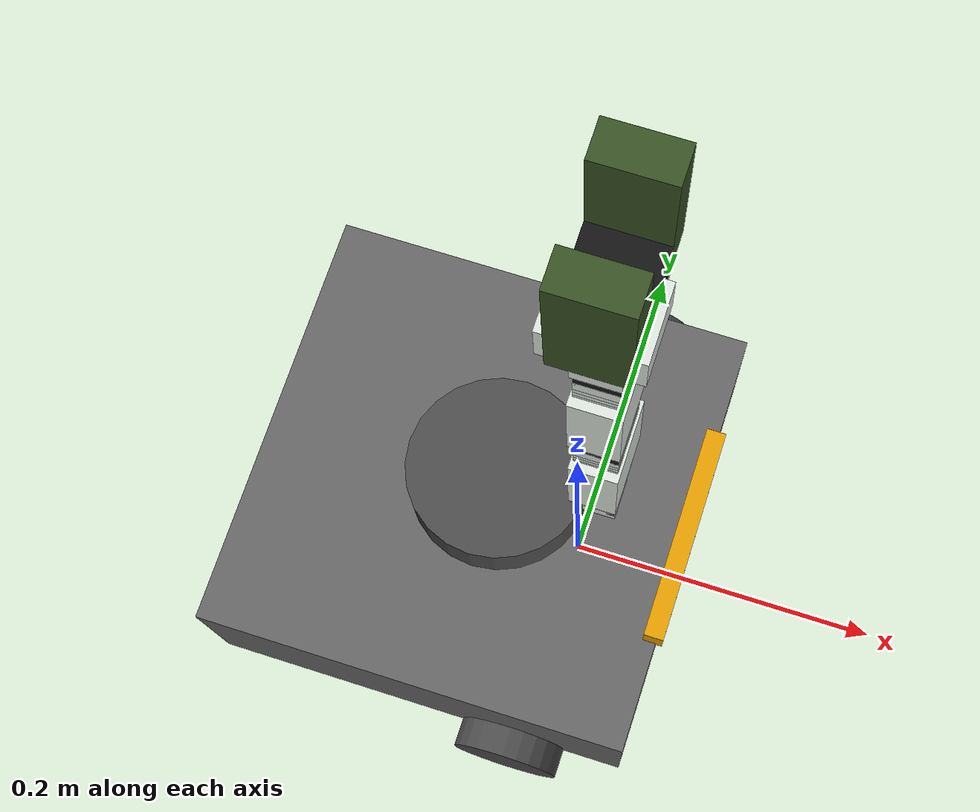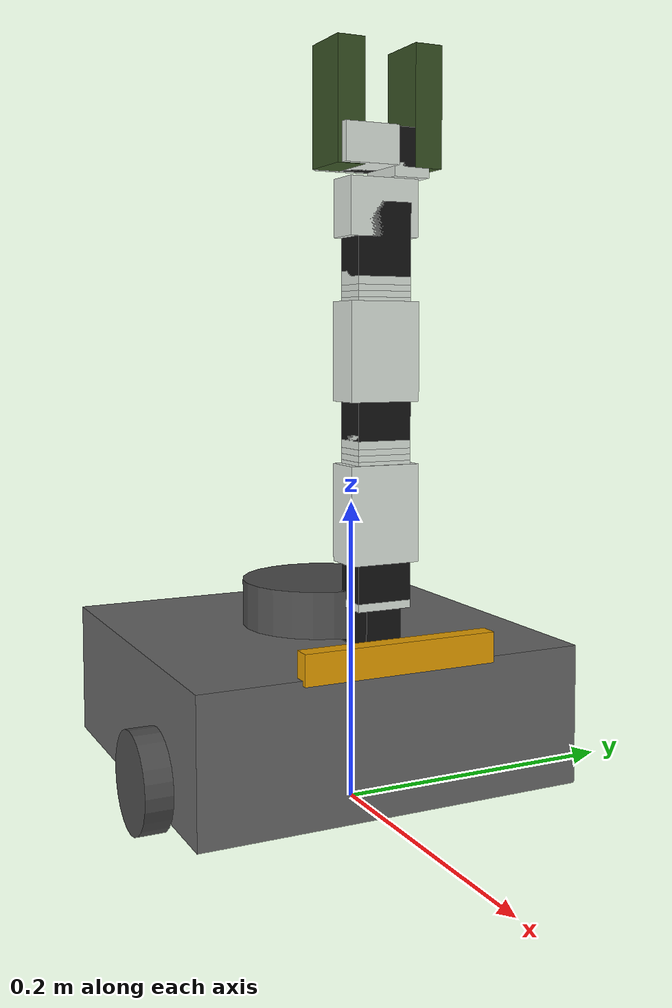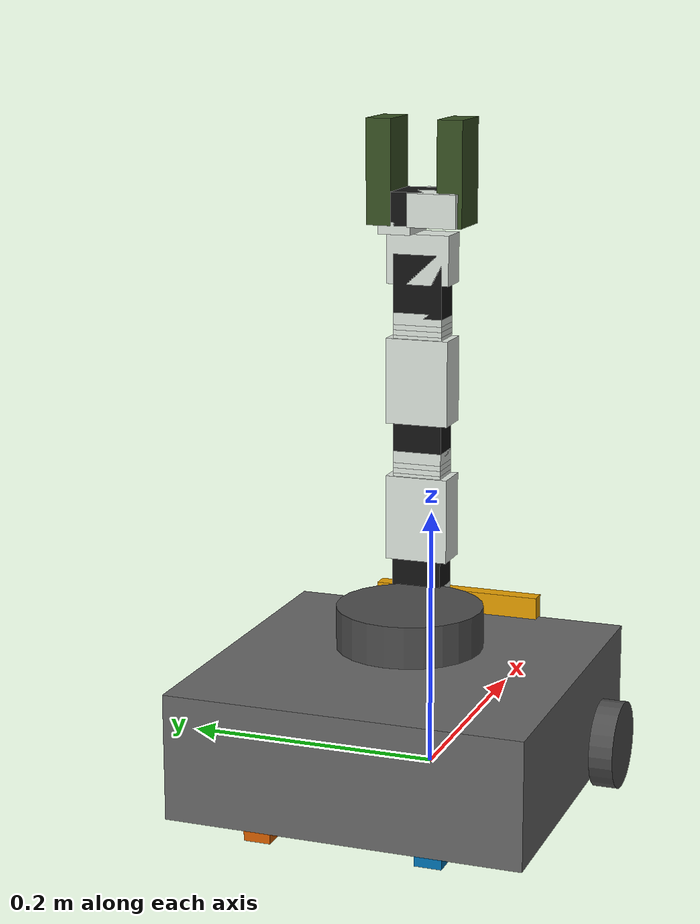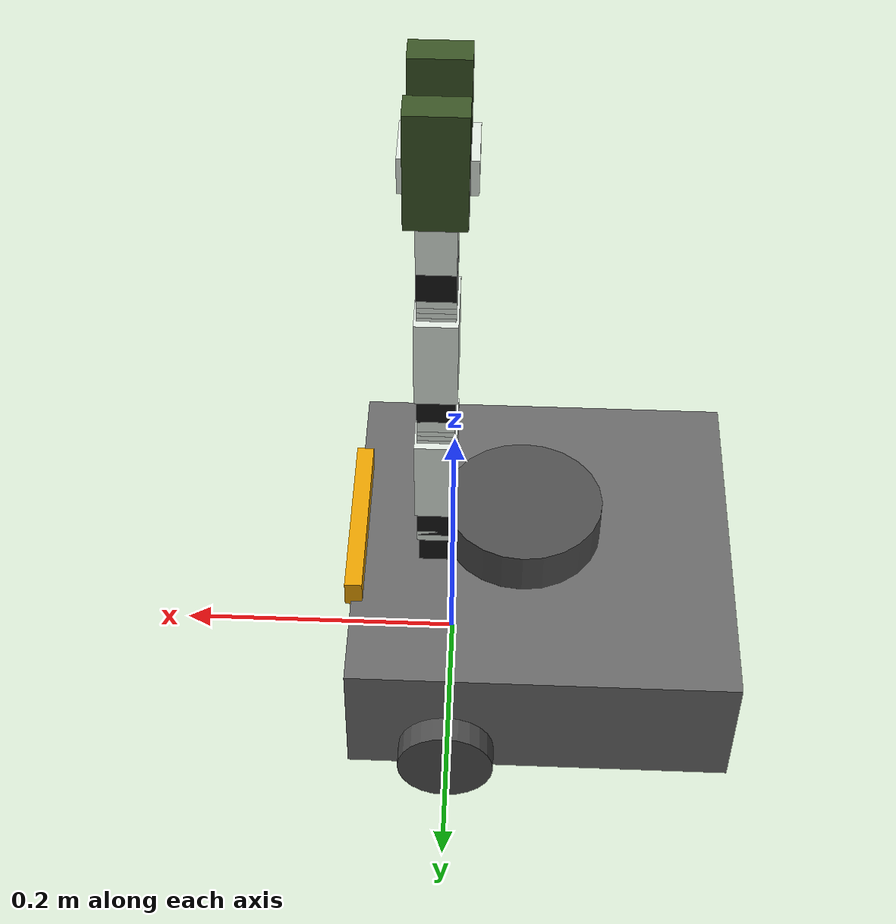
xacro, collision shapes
<?xml version="1.0"?>
<robot xmlns:xacro="http://www.ros.org/wiki/xacro" name="turtlebot_arm">
    <xacro:arg name="initial_positions_file" default="initial_positions.yaml" />

    <!-- Import turtlebot_arm urdf file -->
    <xacro:include filename="$(find turtlebot)/description/turtlebot_with_arm.xacro" />

    <!-- Import control_xacro -->
    <xacro:include filename="turtlebot_arm.ros2_control.xacro" />

    <xacro:turtlebot_arm_ros2_control name="FakeSystem" initial_positions_file="$(arg initial_positions_file)"/>

</robot>

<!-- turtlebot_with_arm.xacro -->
<robot name="turtlenbot_with_arm" xmlns:xacro="http://www.ros.org/wiki/xacro">

<xacro:include filename="$(find turtlebot)/description/turtlebot/urdf/turtlebot3_waffle.urdf"/>
<xacro:include filename="$(find turtlebot)/description/arm/urdf/turtlebot_arm.urdf.xacro"/>

</robot>

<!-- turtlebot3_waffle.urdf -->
<robot name="turtlebot3_waffle" xmlns:xacro="http://ros.org/wiki/xacro">

  <xacro:include filename="turtlebot_control.xacro" />

  <!-- Init colour -->
  <material name="black">
      <color rgba="0.0 0.0 0.0 1.0"/>
  </material>

  <material name="dark">
    <color rgba="0.3 0.3 0.3 1.0"/>
  </material>

  <material name="light_black">
    <color rgba="0.4 0.4 0.4 1.0"/>
  </material>

  <material name="blue">
    <color rgba="0.0 0.0 0.8 1.0"/>
  </material>

  <material name="green">
    <color rgba="0.0 0.8 0.0 1.0"/>
  </material>

  <material name="grey">
    <color rgba="0.5 0.5 0.5 1.0"/>
  </material>

  <material name="orange">
    <color rgba="1.0 0.4235 0.0392 1.0"/>
  </material>

  <material name="brown">
    <color rgba="0.8706 0.8118 0.7647 1.0"/>
  </material>

  <material name="red">
    <color rgba="0.8 0.0 0.0 1.0"/>
  </material>

  <material name="white">
    <color rgba="1.0 1.0 1.0 1.0"/>
  </material>

  <link name="world"/>

  <joint name="base_joint" type="fixed">
    <parent link="world"/>
    <child link="base_link" />
    <origin xyz="0 0 0.010" rpy="0 0 0"/>
  </joint>

  <link name="base_link">
    <visual>
      <origin xyz="-0.064 0 0.0" rpy="0 0 0"/>
      <geometry>
        <mesh filename="file://$(find turtlebot)/description/turtlebot/meshes/bases/waffle_base.stl" scale="0.001 0.001 0.001"/>
      </geometry>
      <material name="light_black"/>
    </visual>

    <collision>
      <origin xyz="-0.064 0 0.047" rpy="0 0 0"/>
      <geometry>
        <box size="0.266 0.266 0.094"/>
      </geometry>
    </collision>

    <inertial>
      <origin xyz="0 0 0" rpy="0 0 0"/>
      <mass value="1.3729096e+00"/>
      <inertia ixx="8.7002718e-03" ixy="-4.7576583e-05" ixz="1.1160499e-04"
               iyy="8.6195418e-03" iyz="-3.5422299e-06"
               izz="1.4612727e-02" />
    </inertial>
  </link>

  <joint name="wheel_left_joint" type="continuous">
    <parent link="base_link"/>
    <child link="wheel_left_link"/>
    <origin xyz="0.0 0.144 0.023" rpy="-1.57 0 0"/>
    <axis xyz="0 0 1"/>
  </joint>

  <link name="wheel_left_link">
    <visual>
      <origin xyz="0 0 0" rpy="1.57 0 0"/>
      <geometry>
        <mesh filename="file://$(find turtlebot)/description/turtlebot/meshes/wheels/left_tire.stl" scale="0.001 0.001 0.001"/>
      </geometry>
      <material name="dark"/>
    </visual>

    <collision>
      <origin xyz="0 0 0" rpy="0 0 0"/>
      <geometry>
        <cylinder length="0.018" radius="0.033"/>
      </geometry>
    </collision>

    <inertial>
      <origin xyz="0 0 0" />
      <mass value="2.8498940e-02" />
      <inertia ixx="1.1175580e-05" ixy="-4.2369783e-11" ixz="-5.9381719e-09"
               iyy="1.1192413e-05" iyz="-1.4400107e-11"
               izz="2.0712558e-05" />
      </inertial>
  </link>

  <joint name="wheel_right_joint" type="continuous">
    <parent link="base_link"/>
    <child link="wheel_right_link"/>
    <origin xyz="0.0 -0.144 0.023" rpy="-1.57 0 0"/>
    <axis xyz="0 0 1"/>
  </joint>

  <link name="wheel_right_link">
    <visual>
      <origin xyz="0 0 0" rpy="1.57 0 0"/>
      <geometry>
        <mesh filename="file://$(find turtlebot)/description/turtlebot/meshes/wheels/right_tire.stl" scale="0.001 0.001 0.001"/>
      </geometry>
      <material name="dark"/>
    </visual>

    <collision>
      <origin xyz="0 0 0" rpy="0 0 0"/>
      <geometry>
        <cylinder length="0.018" radius="0.033"/>
      </geometry>
    </collision>

    <inertial>
      <origin xyz="0 0 0" />
      <mass value="2.8498940e-02" />
      <inertia ixx="1.1175580e-05" ixy="-4.2369783e-11" ixz="-5.9381719e-09"
               iyy="1.1192413e-05" iyz="-1.4400107e-11"
               izz="2.0712558e-05" />
      </inertial>
  </link>

  <joint name="caster_back_right_joint" type="fixed">
    <parent link="base_link"/>
    <child link="caster_back_right_link"/>
    <origin xyz="-0.177 -0.064 -0.004" rpy="-1.57 0 0"/>
  </joint>

  <link name="caster_back_right_link">
    <collision>
      <origin xyz="0 0.001 0" rpy="0 0 0"/>
      <geometry>
        <box size="0.030 0.009 0.020"/>
      </geometry>
    </collision>

    <inertial>
      <origin xyz="0 0 0" />
      <mass value="0.005" />
      <inertia ixx="0.001" ixy="0.0" ixz="0.0"
               iyy="0.001" iyz="0.0"
               izz="0.001" />
    </inertial>
  </link>

  <joint name="caster_back_left_joint" type="fixed">
    <parent link="base_link"/>
    <child link="caster_back_left_link"/>
    <origin xyz="-0.177 0.064 -0.004" rpy="-1.57 0 0"/>
  </joint>

  <link name="caster_back_left_link">
    <collision>
      <origin xyz="0 0.001 0" rpy="0 0 0"/>
      <geometry>
        <box size="0.030 0.009 0.020"/>
      </geometry>
    </collision>

    <inertial>
      <origin xyz="0 0 0" />
      <mass value="0.005" />
      <inertia ixx="0.001" ixy="0.0" ixz="0.0"
               iyy="0.001" iyz="0.0"
               izz="0.001" />
    </inertial>
  </link>

  <joint name="imu_joint" type="fixed">
    <parent link="base_link"/>
    <child link="imu_link"/>
    <origin xyz="0.0 0 0.068" rpy="0 0 0"/>
  </joint>

  <link name="imu_link"/>

  <joint name="scan_joint" type="fixed">
    <parent link="base_link"/>
    <child link="base_scan"/>
    <origin xyz="-0.064 0 0.122" rpy="0 0 0"/>
  </joint>

  <link name="base_scan">
    <visual>
      <origin xyz="0 0 0" rpy="0 0 0"/>
      <geometry>
        <mesh filename="file://$(find turtlebot)/description/turtlebot/meshes/sensors/lds.stl" scale="0.001 0.001 0.001"/>
      </geometry>
      <material name="dark"/>
    </visual>

    <collision>
      <origin xyz="0.015 0 -0.0065" rpy="0 0 0"/>
      <geometry>
        <cylinder length="0.0315" radius="0.055"/>
      </geometry>
    </collision>

    <inertial>
      <mass value="0.114" />
      <origin xyz="0 0 0" />
      <inertia ixx="0.001" ixy="0.0" ixz="0.0"
               iyy="0.001" iyz="0.0"
               izz="0.001" />
    </inertial>
  </link>

  <joint name="camera_joint" type="fixed">
    <origin xyz="0.064 -0.065 0.094" rpy="0 0 0"/>
    <parent link="base_link"/>
    <child link="camera_link"/>
  </joint>

  <link name="camera_link">
    <visual>
     <origin xyz="0 0 0" rpy="1.57 0 1.57"/>
      <geometry>
       <mesh filename="file://$(find turtlebot)/description/turtlebot/meshes/sensors/r200.dae" />
      </geometry>
    </visual>
    <collision>
      <origin xyz="0.003 0.065 0.007" rpy="0 0 0"/>
      <geometry>
        <box size="0.012 0.132 0.020"/>
      </geometry>
    </collision>

    <!-- This inertial field needs doesn't contain reliable data!! -->
  </link>

  <joint name="camera_rgb_joint" type="fixed">
    <origin xyz="0.005 0.018 0.013" rpy="0 0 0"/>
    <parent link="camera_link"/>
    <child link="camera_rgb_frame"/>
  </joint>
  <link name="camera_rgb_frame"/>

  <joint name="camera_rgb_optical_joint" type="fixed">
    <origin xyz="0 0 0" rpy="-1.57 0 -1.57"/>
    <parent link="camera_rgb_frame"/>
    <child link="camera_rgb_optical_frame"/>
  </joint>
  <link name="camera_rgb_optical_frame"/>

  <joint name="camera_depth_joint" type="fixed">
    <origin xyz="0.005 0.028 0.013" rpy="0 0 0"/>
    <parent link="camera_link"/>
    <child link="camera_depth_frame"/>
  </joint>
  <link name="camera_depth_frame"/>

  <joint name="camera_depth_optical_joint" type="fixed">
    <origin xyz="0 0 0" rpy="-1.57 0 -1.57"/>
    <parent link="camera_depth_frame"/>
    <child link="camera_depth_optical_frame"/>
  </joint>
  <link name="camera_depth_optical_frame"/>

</robot>

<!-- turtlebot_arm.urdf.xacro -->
<!-- Describe URDF for Turtlebot Arm -->
<robot name="turtlebot_arm" xmlns:xacro="http://ros.org/wiki/xacro">

    <!-- We can configure joints velocity limit and lower/upper limits
         to allow access to different operational areas, e.g. left handed vs. right handed robot -->
    <xacro:property name="joints_vlimit" value="1.571"/>
    <xacro:property name="pan_llimit" value="-2.617"/>
    <xacro:property name="pan_ulimit" value="2.617"/>
    <xacro:property name="shoulder_llimit" value="-2.617"/>
    <xacro:property name="shoulder_ulimit" value="2.617"/>
    <xacro:property name="elbow_llimit" value="-2.617"/>
    <xacro:property name="elbow_ulimit" value="2.617"/>
    <xacro:property name="wrist_llimit" value="-1.745"/>
    <xacro:property name="wrist_ulimit" value="1.745"/>

    <!-- Included URDF Files -->
    <xacro:include filename="$(find turtlebot)/description/arm/urdf/turtlebot_arm.xacro"/>

    <!-- As we don't have here a turtlebot base, add a base_link link as its location reference -->

    <!-- Turtlebot arm macro -->
    <xacro:turtlebot_arm parent="base_link" color="White" gripper_color="Green"
                         pincher_gripper="false" turtlebot_gripper="true">
      <!-- Place the "floating" arm at the location it should be if mounted on a turtlebot,
           as pick and place and other demos assume this location -->
      <origin xyz="0.012 0.012 0.1018"/>
    </xacro:turtlebot_arm>
</robot>

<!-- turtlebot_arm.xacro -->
<!-- Arm description for Turtlebot Arm and PhantomX Pincher arm -->
<robot xmlns:xacro="http://ros.org/wiki/xacro">
  <xacro:include filename="$(find turtlebot)/description/arm/urdf/arm_hardware.xacro"/>

  <material name="White">
    <color rgba="0.87 0.90 0.87 1.0"/>
  </material>
  <material name="Black">
    <color rgba="0.08 0.08 0.08 1.0"/>
  </material>
  <material name="Gray">
    <color rgba="0.2 0.2 0.21 1.0"/>
  </material>
  <material name="Green">
    <color rgba="0.22 0.32 0.14 1.0"/>
  </material>

  <xacro:macro name="turtlebot_arm" params="parent color pincher_gripper turtlebot_gripper gripper_color *origin">
    <link name="arm_base_link"/>
    <joint name="arm_base_joint" type="fixed">
      <xacro:insert_block name="origin"/>
      <parent link="${parent}"/>
      <child link="arm_base_link"/>
    </joint>

    <!-- fake gripper_link joint gives us a free servo!
         this makes us 5DOF and saves you $44.90
         that's a lot of coin! -->
    <link name="gripper_link"/>
    <joint name="gripper_link_joint" type="revolute">
      <origin xyz="0 0 0.112" rpy="0 -1.57 0"/>
      <parent link="arm_wrist_flex_link"/>
      <child link="gripper_link"/>
      <limit effort="30" velocity="1" lower="-3.14" upper="3.14"/>
      <axis xyz="1 0 0"/>
    </joint>

    <!-- shoulder pan joint -->
    <xacro:dynamixel_AX12_fixed parent="arm_base_link" name="arm_shoulder_pan_servo">
      <origin xyz="0 0 0" rpy="${M_PI/2} 0 ${M_PI/2}"/>
    </xacro:dynamixel_AX12_fixed>
    <xacro:bioloid_F3_revolute parent="arm_shoulder_pan_servo_link" name="arm_shoulder_pan" color="${color}"
                               vlimit="${joints_vlimit}" llimit="${pan_llimit}" ulimit="${pan_ulimit}">
      <origin xyz="0 ${AX12_WIDTH/2} 0" rpy="${-M_PI/2} ${M_PI/2} ${M_PI}"/>
    </xacro:bioloid_F3_revolute>

    <!-- shoulder lift joint -->
    <xacro:dynamixel_AX12_fixed parent="arm_shoulder_pan_link" name="arm_shoulder_lift_servo">
      <origin xyz="0 0 ${-AX12_HEIGHT-F10_HEIGHT+0.001}" rpy="0 ${M_PI} 0"/>
    </xacro:dynamixel_AX12_fixed>
    <xacro:bioloid_F4_revolute parent="arm_shoulder_lift_servo_link" name="arm_shoulder_lift" color="${color}"
                               vlimit="${joints_vlimit}" llimit="${shoulder_llimit}" ulimit="${shoulder_ulimit}">
      <origin xyz="0 0 0" rpy="0 0 0"/>
    </xacro:bioloid_F4_revolute>
    <xacro:bioloid_F10_fixed parent="arm_shoulder_lift_link" name="arm_shoulder_F10_0" color="${color}">
      <origin xyz="0 0 ${F4_HEIGHT+F10_HEIGHT/2}" rpy="0 0 0"/>
    </xacro:bioloid_F10_fixed>
    <xacro:bioloid_F10_fixed parent="arm_shoulder_F10_0_link" name="arm_shoulder_F10_1" color="${color}">
      <origin xyz="0 0 ${F10_HEIGHT}" rpy="0 0 0"/>
    </xacro:bioloid_F10_fixed>
    <xacro:bioloid_F10_fixed parent="arm_shoulder_F10_1_link" name="arm_shoulder_F10_2" color="${color}">
      <origin xyz="0 0 ${F10_HEIGHT}" rpy="0 0 0"/>
    </xacro:bioloid_F10_fixed>
    <xacro:bioloid_F3_fixed parent="arm_shoulder_F10_2_link" name="arm_shoulder_F3_0" color="${color}">
      <origin xyz="0 0 ${F10_HEIGHT/2}" rpy="0 ${M_PI} 0"/>
    </xacro:bioloid_F3_fixed>

    <!-- elbow joint -->
    <xacro:dynamixel_AX12_fixed parent="arm_shoulder_F3_0_link" name="arm_elbow_flex_servo">
      <origin xyz="0 0 ${-AX12_HEIGHT-F10_HEIGHT+0.001}" rpy="0 ${M_PI} 0"/>
    </xacro:dynamixel_AX12_fixed>
    <xacro:bioloid_F4_revolute parent="arm_elbow_flex_servo_link" name="arm_elbow_flex" color="${color}"
                               vlimit="${joints_vlimit}" llimit="${elbow_llimit}" ulimit="${elbow_ulimit}">
      <origin xyz="0 0 0" rpy="0 0 0"/>
    </xacro:bioloid_F4_revolute>
    <xacro:bioloid_F10_fixed parent="arm_elbow_flex_link" name="arm_elbow_F10_0" color="${color}">
      <origin xyz="0 0 ${F4_HEIGHT+F10_HEIGHT/2}" rpy="0 0 0"/>
    </xacro:bioloid_F10_fixed>
    <xacro:bioloid_F10_fixed parent="arm_elbow_F10_0_link" name="arm_elbow_F10_1" color="${color}">
      <origin xyz="0 0 ${F10_HEIGHT}" rpy="0 0 0"/>
    </xacro:bioloid_F10_fixed>
    <xacro:bioloid_F10_fixed parent="arm_elbow_F10_1_link" name="arm_elbow_F10_2" color="${color}">
      <origin xyz="0 0 ${F10_HEIGHT}" rpy="0 0 0"/>
    </xacro:bioloid_F10_fixed>
    <xacro:bioloid_F3_fixed parent="arm_elbow_F10_2_link" name="arm_elbow_F3_0" color="${color}">
      <origin xyz="0 0 ${F10_HEIGHT/2}" rpy="0 ${M_PI} 0"/>
    </xacro:bioloid_F3_fixed>

    <!-- wrist joint -->
    <xacro:dynamixel_AX12_fixed parent="arm_elbow_F3_0_link" name="arm_wrist_flex_servo">
      <origin xyz="0 0 ${-AX12_HEIGHT-F10_HEIGHT+0.001}" rpy="0 ${M_PI} 0"/>
    </xacro:dynamixel_AX12_fixed>
    <xacro:bioloid_F2_revolute parent="arm_wrist_flex_servo_link" name="arm_wrist_flex" color="${color}"
                               vlimit="${joints_vlimit}" llimit="${wrist_llimit}" ulimit="${wrist_ulimit}">
      <origin xyz="0 0 0" rpy="0 0 0"/>
    </xacro:bioloid_F2_revolute>

  <!-- gripper - Load either Turtlebot gripper or Pincher Gripper -->
  <xacro:if value="${pincher_gripper}">
  <xacro:include filename="$(find turtlebot)/description/arm/urdf/pincher_gripper.xacro"/>
  </xacro:if>
  <xacro:if value="${turtlebot_gripper}">
  <xacro:include filename="$(find turtlebot)/description/arm/urdf/turtlebot_gripper.xacro"/>
  </xacro:if>

  </xacro:macro>

</robot>

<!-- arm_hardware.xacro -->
<!-- Basic URDF components for Turtlebot Arm and PhantomX Pincher Arm-->
<robot xmlns:xacro="http://ros.org/wiki/xacro">
  <xacro:property name="M_PI" value="3.14159"/>
  <xacro:property name="M_SCALE" value="0.001"/>
  <xacro:property name="F10_HEIGHT" value="0.004"/>
  <xacro:property name="F4_HEIGHT" value="0.0525"/>
  <xacro:property name="F3_HEIGHT" value="0.009"/>
  <xacro:property name="AX12_HEIGHT" value="0.0385"/>
  <xacro:property name="AX12_WIDTH" value="0.038"/>
  <xacro:property name="AX12_LENGTH" value="0.050"/>
  <xacro:property name="F2_HEIGHT" value="0.0265"/>

  <!-- Calculates the inertial properties of a bounding box. From
       https://en.wikipedia.org/wiki/List_of_moments_of_inertia#List_of_3D_inertia_tensors-->
  <xacro:macro name="box_inertia" params="length width height mass">
    <inertial>
      <mass value="${mass}"/>
      <origin xyz="0 0 0"/>
      <inertia ixx="${mass/12*(height**2+length**2)}" ixy="0" ixz = "0"
               iyy="${mass/12*(width**2+length**2)}" iyz="0"
               izz="${mass/12*(width**2+height**2)}"/>
    </inertial>
  </xacro:macro>

  <xacro:macro name="arm_mount" params="parent name color *origin">
    <joint name="${name}_joint" type="fixed">
      <xacro:insert_block name="origin"/>
      <parent link="${parent}"/>
      <child link="${name}_link"/>
    </joint>

    <link name="${name}_link">
      <xacro:box_inertia length="0.074" width="0.074" height="0.004" mass="0.018"/>

      <visual>
        <origin xyz="-0.028 -0.0493 0.014" rpy="0.0 0.0 -${M_PI/2}"/>
        <geometry>
          <mesh filename="file://$(find turtlebot)/description/arm/meshes/mount.stl" scale="${M_SCALE} ${M_SCALE} ${M_SCALE}"/>
        </geometry>
        <material name="${color}"/>
      </visual>

      <collision>
        <origin xyz="-0.01 0.0 0.0165" rpy="0.0 0.0 0.0"/>
        <geometry>
          <box size="0.074 0.074 0.004"/>
        </geometry>
      </collision>
    </link>

    <gazebo reference="${name}_link">
      <material>Gazebo/${color}</material>
      <selfCollide>true</selfCollide>
      <gravity>true</gravity>
    </gazebo>
  </xacro:macro>

  <xacro:macro name="finger_fixed" params="parent name color *origin">
    <joint name="${name}_joint" type="fixed">
      <xacro:insert_block name="origin"/>
      <parent link="${parent}"/>
      <child link="${name}_link"/>
    </joint>

    <link name="${name}_link">
      <xacro:box_inertia length="0.0783" width="0.03801" height="0.0193" mass="0.015"/>

      <visual>
        <origin xyz=" 0 0 0 " rpy="0 0 0"/>
        <geometry>
          <mesh filename="file://$(find turtlebot)/description/arm/meshes/turtlebot_finger.stl" scale="${M_SCALE} ${M_SCALE} ${M_SCALE}"/>
        </geometry>
        <material name="${color}"/>
      </visual>

      <collision>
        <origin xyz="0.02645 0.0 -0.00655" rpy="0 0 0"/>
        <geometry>
          <box size="0.0783 0.03801 0.0193"/>
        </geometry>
      </collision>
    </link>

    <gazebo reference="${name}_link">
      <material>Gazebo/${color}</material>
      <selfCollide>true</selfCollide>
      <gravity>true</gravity>
    </gazebo>
  </xacro:macro>

  <xacro:macro name="dynamixel_AX12_fixed" params="parent name *origin">
    <joint name="${name}_joint" type="fixed">
      <xacro:insert_block name="origin"/>
      <parent link="${parent}"/>
      <child link="${name}_link"/>
    </joint>

    <link name="${name}_link">
      <inertial>
        <mass value="0.055"/>
        <origin xyz="0 0 0"/>
        <inertia ixx="0.000017012" ixy="0.0" ixz="0.0"
                 iyy="0.000013258" iyz="0.0"
                 izz="0.000009483"/>
      </inertial>

      <visual>
        <origin xyz=" 0 0 0 " rpy="0 0 0"/>
        <geometry>
          <mesh filename="file://$(find turtlebot)/description/arm/meshes/ax12_box.stl" scale="${M_SCALE} ${M_SCALE} ${M_SCALE}"/>
        </geometry>
        <material name="Black"/>
      </visual>

      <collision>
        <origin xyz="0.0 0.0 -0.01241" rpy="0 0 0"/>
        <geometry>
          <box size="0.025 0.038 0.04762"/>
        </geometry>
      </collision>
    </link>

    <gazebo reference="${name}_link">
      <material>Gazebo/Black</material>
      <selfCollide>true</selfCollide>
      <gravity>true</gravity>
    </gazebo>
  </xacro:macro>

  <xacro:macro name="bioloid_F10_fixed" params="parent name color *origin">
    <joint name="${name}_joint" type="fixed">
      <xacro:insert_block name="origin"/>
      <parent link="${parent}"/>
      <child link="${name}_link"/>
    </joint>

    <link name="${name}_link">
      <xacro:box_inertia length="0.025" width="0.038" height="0.004" mass="0.004"/>

      <visual>
        <origin xyz=" 0 0 0 " rpy="0 0 0"/>
        <geometry>
          <mesh filename="file://$(find turtlebot)/description/arm/meshes/F10.stl" scale="${M_SCALE} ${M_SCALE} ${M_SCALE}"/>
        </geometry>
        <material name="${color}"/>
      </visual>

      <collision>
        <origin xyz="0.0 0.0 0.0" rpy="0 0 0"/>
        <geometry>
          <box size="0.025 0.038 0.004"/>
        </geometry>
      </collision>
    </link>

    <gazebo reference="${name}_link">
      <material>Gazebo/${color}</material>
      <selfCollide>true</selfCollide>
      <gravity>true</gravity>
    </gazebo>
  </xacro:macro>

  <xacro:macro name="bioloid_F3_fixed" params="parent name color *origin">
    <joint name="${name}_joint" type="fixed">
      <xacro:insert_block name="origin"/>
      <parent link="${parent}"/>
      <child link="${name}_link"/>
    </joint>

    <link name="${name}_link">
      <xacro:box_inertia length="0.025" width="0.038" height="0.009" mass="0.005"/>

      <visual>
        <origin xyz=" 0 0 0 " rpy="0 0 0"/>
        <geometry>
          <mesh filename="file://$(find turtlebot)/description/arm/meshes/F3.stl" scale="${M_SCALE} ${M_SCALE} ${M_SCALE}"/>
        </geometry>
        <material name="${color}"/>
      </visual>

      <collision>
        <origin xyz="0.0 0.0 -0.0045" rpy="0 0 0"/>
        <geometry>
          <box size="0.025 0.038 0.009"/>
        </geometry>
      </collision>
    </link>

    <gazebo reference="${name}_link">
      <material>Gazebo/${color}</material>
      <selfCollide>true</selfCollide>
      <gravity>true</gravity>
    </gazebo>
  </xacro:macro>

  <xacro:macro name="bioloid_F3_revolute" params="parent name color llimit ulimit vlimit *origin">
    <joint name="${name}_joint" type="revolute">
      <xacro:insert_block name="origin"/>
      <axis xyz="0 0 -1"/>
      <limit effort="30" velocity="${vlimit}" lower="${llimit}" upper="${ulimit}"/>
      <dynamics friction="0.13"/>
      <parent link="${parent}"/>
      <child link="${name}_link"/>
    </joint>

    <link name="${name}_link">
      <xacro:box_inertia length="0.025" width="0.038" height="0.009" mass="0.008"/>

      <visual>
        <origin xyz=" 0 0 0 " rpy="0 0 0"/>
        <geometry>
          <mesh filename="file://$(find turtlebot)/description/arm/meshes/F3.stl" scale="${M_SCALE} ${M_SCALE} ${M_SCALE}"/>
        </geometry>
        <material name="${color}"/>
      </visual>

      <collision>
        <origin xyz="0.0 0.0 -0.0045" rpy="0 0 0"/>
        <geometry>
          <box size="0.025 0.038 0.009"/>
        </geometry>
      </collision>
    </link>

    <gazebo reference="${name}_link">
      <material>Gazebo/${color}</material>
      <selfCollide>true</selfCollide>
      <gravity>true</gravity>
    </gazebo>
  </xacro:macro>

  <xacro:macro name="bioloid_F2_revolute" params="parent name color llimit ulimit vlimit *origin">
    <joint name="${name}_joint" type="revolute">
      <xacro:insert_block name="origin"/>
      <axis xyz="0 1 0"/>
      <limit effort="30" velocity="${vlimit}" lower="${llimit}" upper="${ulimit}"/>
      <dynamics friction="0.13"/>
      <parent link="${parent}"/>
      <child link="${name}_link"/>
    </joint>

    <link name="${name}_link">
      <xacro:box_inertia length="0.025" width="0.0485" height="0.0375" mass="0.010"/>

      <visual>
        <origin xyz=" 0 0 0 " rpy="0 0 0"/>
        <geometry>
          <mesh filename="file://$(find turtlebot)/description/arm/meshes/F2.stl" scale="${M_SCALE} ${M_SCALE} ${M_SCALE}"/>
        </geometry>
        <material name="${color}"/>
      </visual>

      <collision>
        <origin xyz="0.0 0.0 0.00775" rpy="0 0 0"/>
        <geometry>
          <box size="0.025 0.0485 0.0375"/>
        </geometry>
      </collision>
    </link>

    <gazebo reference="${name}_link">
      <material>Gazebo/${color}</material>
      <selfCollide>true</selfCollide>
      <gravity>true</gravity>
    </gazebo>
  </xacro:macro>

  <xacro:macro name="bioloid_F4_revolute" params="parent name color llimit ulimit vlimit *origin">
    <joint name="${name}_joint" type="revolute">
      <xacro:insert_block name="origin"/>
      <axis xyz="0 1 0"/>
      <limit effort="30" velocity="${vlimit}" lower="${llimit}" upper="${ulimit}"/>
      <dynamics friction="0.13"/>
      <parent link="${parent}"/>
      <child link="${name}_link"/>
    </joint>

    <link name="${name}_link">
      <xacro:box_inertia length="0.028" width="0.0485" height="0.065" mass="0.016"/>

      <visual>
        <origin xyz=" 0 0 0 " rpy="0 0 0"/>
        <geometry>
          <mesh filename="file://$(find turtlebot)/description/arm/meshes/F4.stl" scale="${M_SCALE} ${M_SCALE} ${M_SCALE}"/>
        </geometry>
        <material name="${color}"/>
      </visual>

      <collision>
        <origin xyz="0.0 0.0 0.0215" rpy="0 0 0"/>
        <geometry>
          <box size="0.028 0.0485 0.065"/>
        </geometry>
      </collision>
    </link>

    <gazebo reference="${name}_link">
      <material>Gazebo/${color}</material>
      <selfCollide>true</selfCollide>
      <gravity>true</gravity>
    </gazebo>
  </xacro:macro>

  <xacro:macro name="gripper_finger_base" params="parent name color *origin">
    <joint name="${name}_joint" type="fixed">
      <xacro:insert_block name="origin"/>
      <parent link="${parent}"/>
      <child link="${name}_link"/>
    </joint>

    <link name="${name}_link">
      <xacro:box_inertia length="0.002" width="0.040" height="0.075" mass="0.00001"/>
      <visual>
        <origin xyz="0.016 0 -.015 " rpy="${M_PI} ${-M_PI/2} ${M_PI/2}"/>
        <geometry>
          <mesh filename="file://$(find turtlebot)/description/arm/meshes/pincher_finger_base.stl" scale=".01 .01 .01"/>
        </geometry>
        <material name="${color}"/>
      </visual>

      <collision>
        <origin xyz="0.016 0.0 -0.015" rpy="0 0 0"/>
        <geometry>
          <box size="0.002 0.040 0.075"/>
        </geometry>
      </collision>
    </link >

    <gazebo reference="${name}_link">
      <material>Gazebo/${color}</material>
      <selfCollide>true</selfCollide>
      <gravity>true</gravity>
    </gazebo>
  </xacro:macro>

    <xacro:macro name="pincher_gripper" params="name color *origin">
      <link name="${name}_link">
      <xacro:box_inertia length="0.036" width="0.028" height="0.004" mass="0.00001"/>
      <visual>
        <xacro:insert_block name="origin"/>
        <geometry>
          <mesh filename="file://$(find turtlebot)/description/arm/meshes/pincher_finger.stl" scale=".01 .01 .01"/>
        </geometry>
        <material name="${color}"/>
      </visual>
      <collision>
        <xacro:insert_block name="origin"/>
        <geometry>
          <box size="0.023 0.028 0.038"/>
        </geometry>
      </collision>
    </link>

    <gazebo reference="${name}_link">
      <material>Gazebo/${color}</material>
      <selfCollide>true</selfCollide>
      <gravity>true</gravity>
    </gazebo>
  </xacro:macro>
</robot>

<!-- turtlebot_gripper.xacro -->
<!-- Turtlebot Arm gripper URDF-->
<robot xmlns:xacro="http://ros.org/wiki/xacro">
    <xacro:bioloid_F3_fixed parent="arm_wrist_flex_link" name="arm_wrist_F3_0" color="${color}">
      <origin xyz="0 0.016 ${F2_HEIGHT}" rpy="0 ${M_PI} ${-M_PI/2}"/>
    </xacro:bioloid_F3_fixed>
    <!-- gripper joint -->
    <xacro:dynamixel_AX12_fixed parent="arm_wrist_F3_0_link" name="gripper_servo">
      <origin xyz="-0.02275 0 ${-AX12_WIDTH/2}" rpy="${M_PI} ${M_PI/2} 0"/>
    </xacro:dynamixel_AX12_fixed>

    <!-- finger 1 -->
    <joint name="gripper_joint" type="revolute">
      <origin xyz="0 0 0" rpy="0 0 0"/>
      <axis xyz="0 1 0"/>
      <limit effort="30" velocity="0.785" lower="-0.40" upper="0.46"/>
      <parent link="gripper_servo_link"/>
      <child link="gripper_active_link"/>
    </joint>
    <link name="gripper_active_link">
      <inertial>
        <mass value="0.010"/>
        <origin xyz="0 0 0"/>
        <inertia ixx="0.000001" ixy="0.0" ixz="0.0"
                 iyy="0.000001" iyz="0.0"
                 izz="0.000001"/>
      </inertial>
      <visual>
        <origin xyz=" 0 0 0 " rpy="0 0 0"/>
        <geometry>
          <mesh filename="file://$(find turtlebot)/description/arm/meshes/F2.stl" scale="${M_SCALE} ${M_SCALE} ${M_SCALE}"/>
        </geometry>
        <material name="${color}"/>
      </visual>
      <collision>
        <origin xyz="0.0 0.0 0.00775" rpy="0 0 0"/>
        <geometry>
          <box size="0.025 0.0485 0.0375"/>
        </geometry>
      </collision>
    </link>
    <xacro:finger_fixed parent="gripper_active_link" name="gripper_active_finger" color="${gripper_color}">
      <origin xyz="0 0 ${F2_HEIGHT}" rpy="0 0 0"/>
    </xacro:finger_fixed>

    <!-- finger 2 -->
    <xacro:bioloid_F3_fixed parent="gripper_servo_link" name="gripper_static" color="${color}">
      <origin xyz="0 0 ${-AX12_HEIGHT-F10_HEIGHT+0.001}" rpy="0 ${M_PI} 0"/>
    </xacro:bioloid_F3_fixed>
    <xacro:finger_fixed parent="gripper_static_link" name="gripper_static_finger" color="${gripper_color}">
      <origin xyz="0 0 0" rpy="0 0 ${M_PI}"/>
    </xacro:finger_fixed>
</robot>
